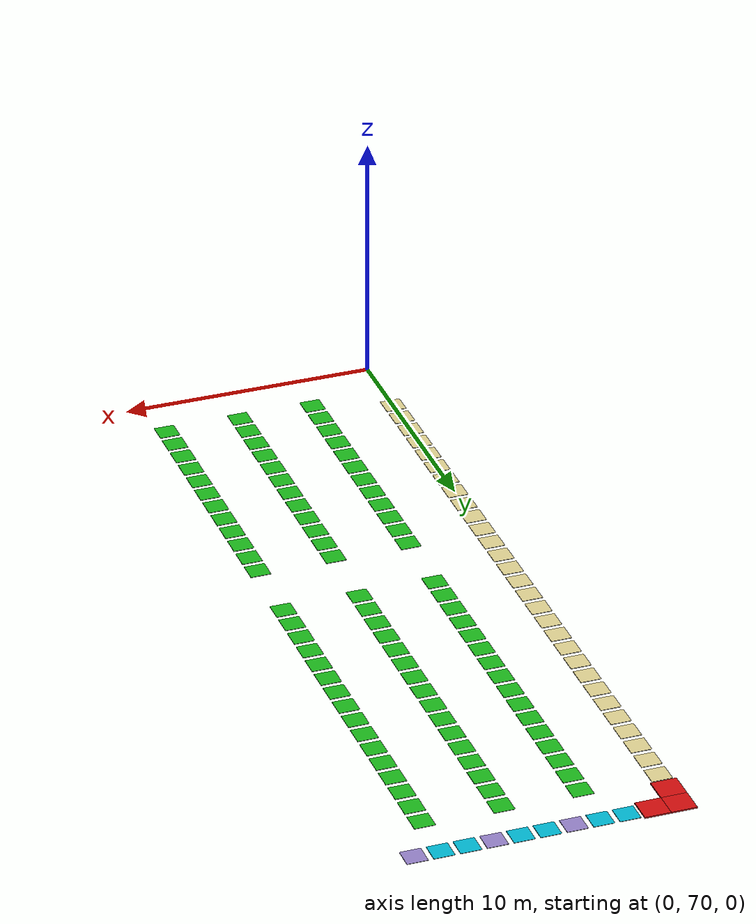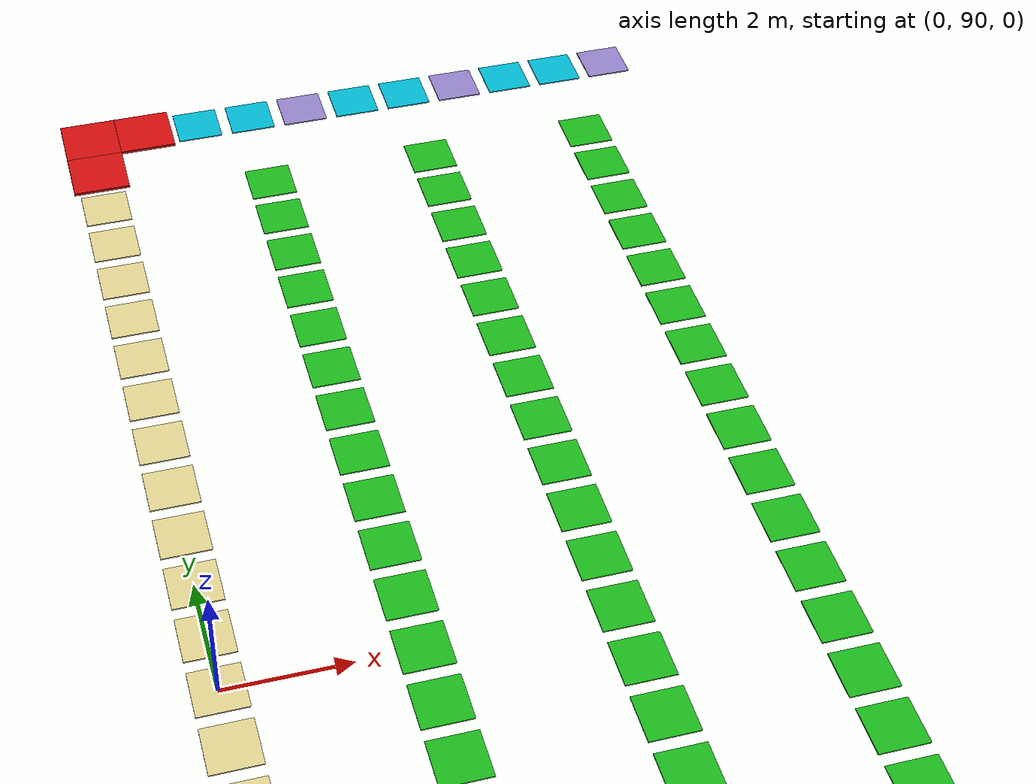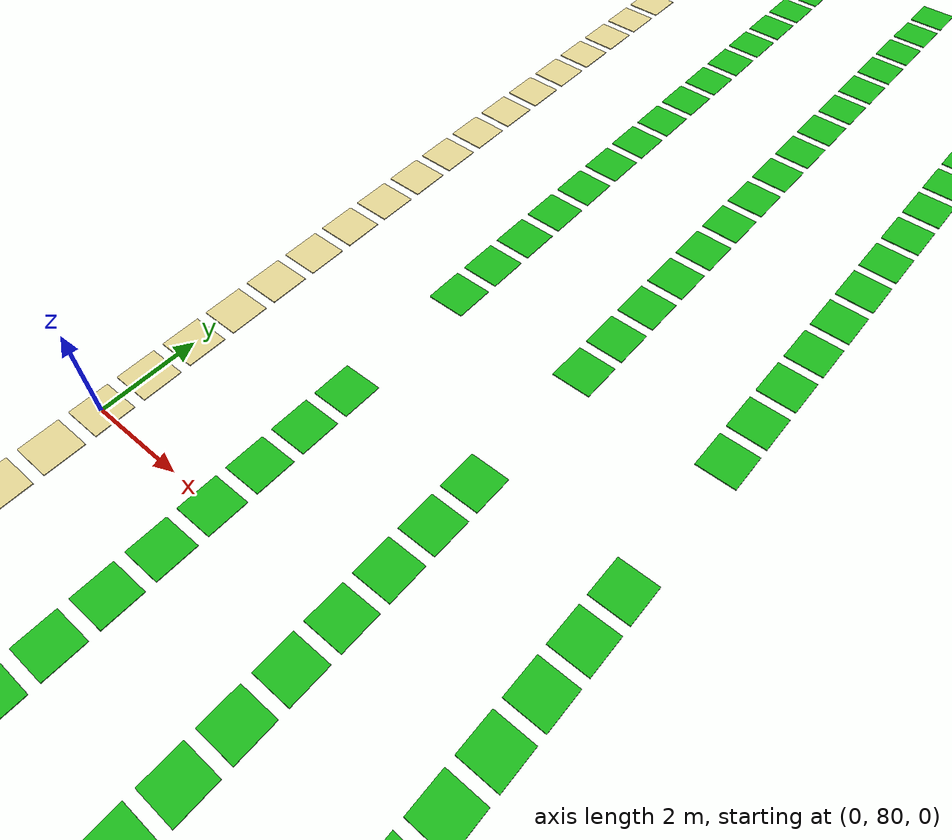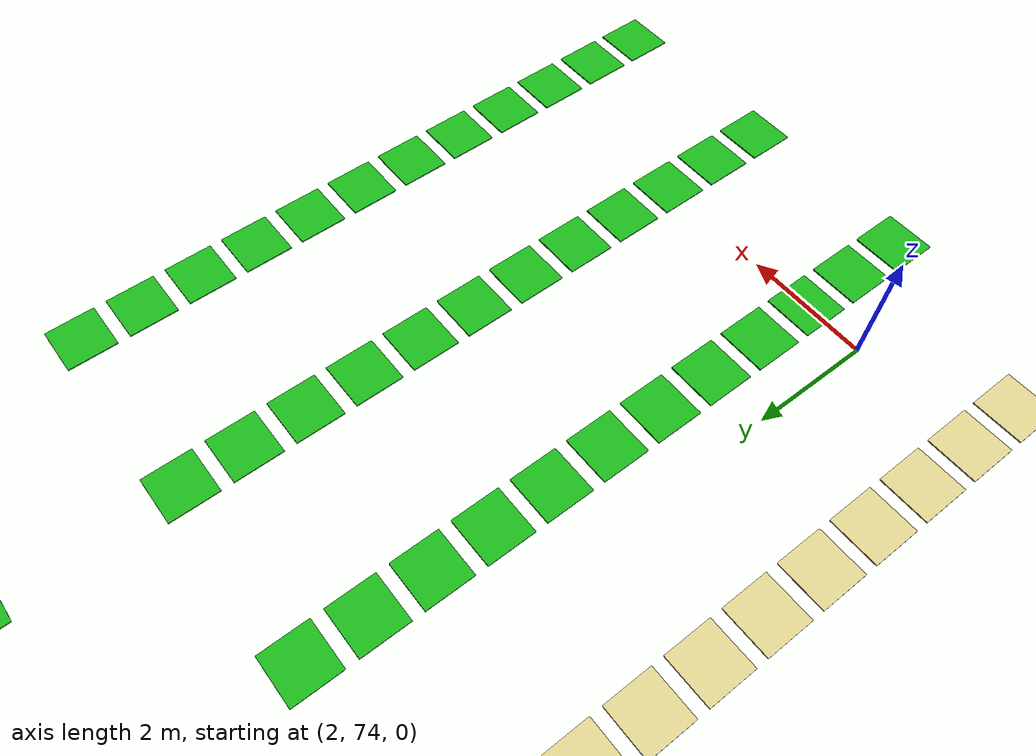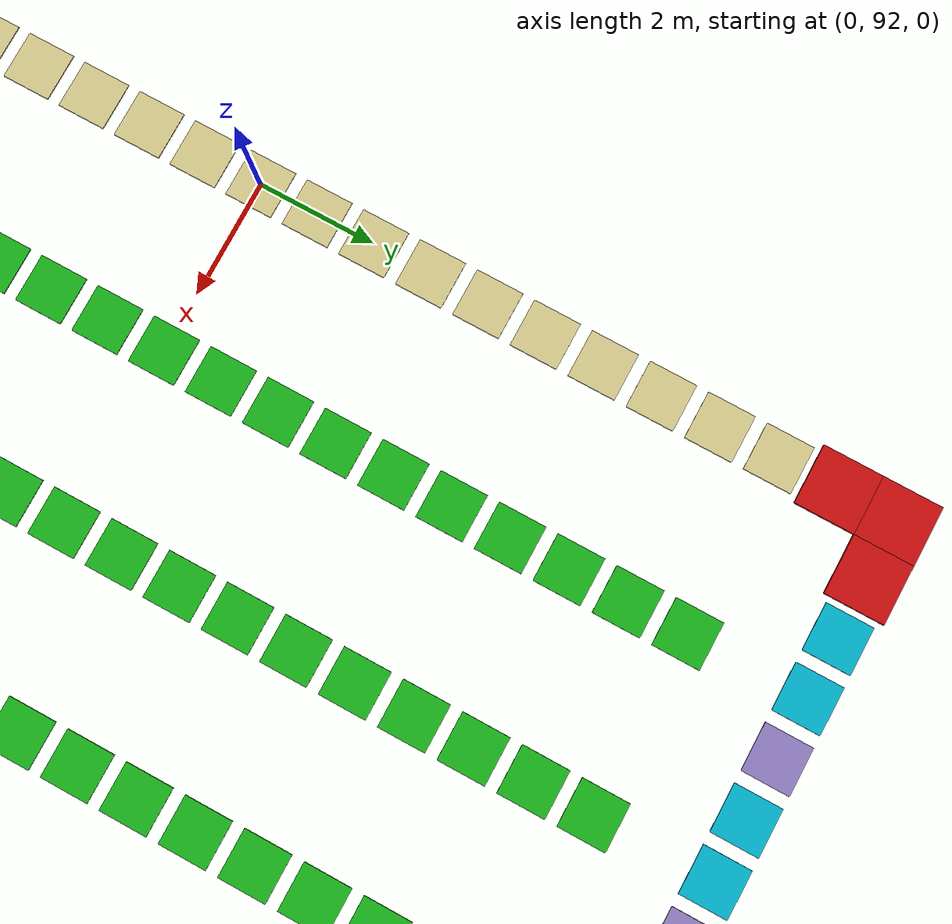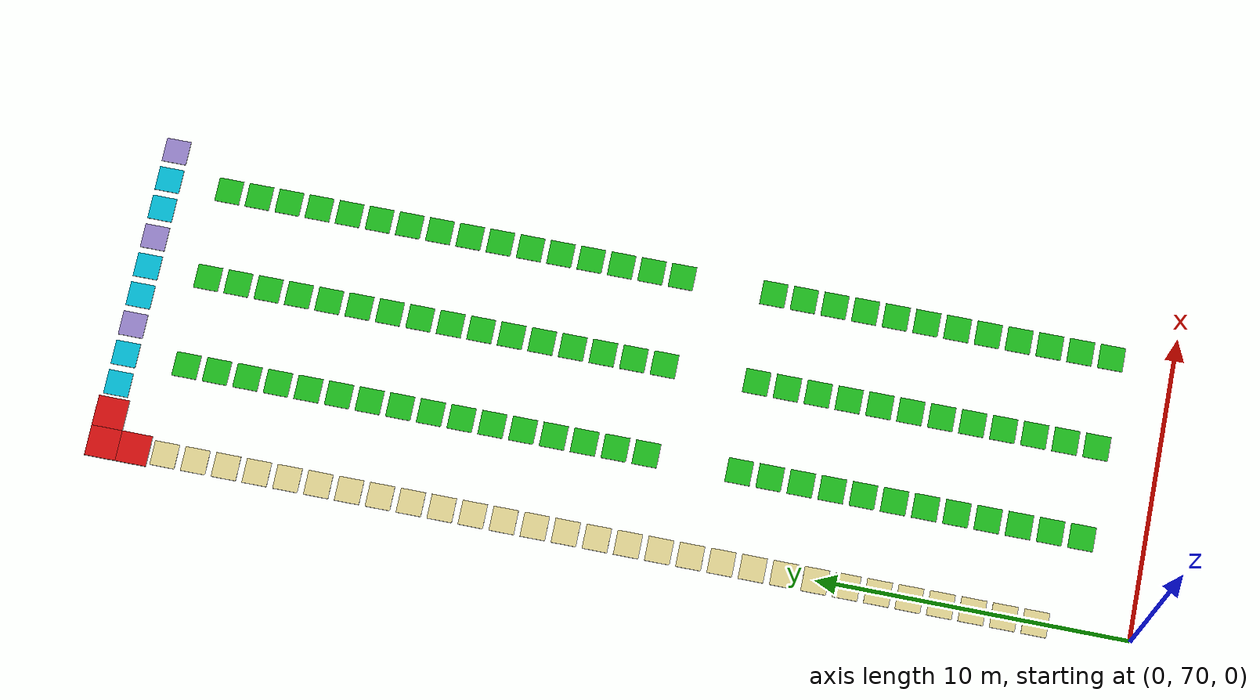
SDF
<sdf version="1.10">
 <world name="my_map">
  <model name="blocked_0002">
   <static>true</static>
   <pose>0.0
        102.0
        0.045
        0 0 0</pose>
   <link name="link">
    <visual name="visual">
     <geometry><box><size>1.0
                1.0
                0.05</size></box></geometry>
     <material><ambient>0.8 0.05 0.05 1</ambient><diffuse>0.8 0.05 0.05 1</diffuse></material>
    </visual>
   </link>
  </model>
  <model name="blocked_0003">
   <static>true</static>
   <pose>0.0
        103.0
        0.045
        0 0 0</pose>
   <link name="link">
    <visual name="visual">
     <geometry><box><size>1.0
                1.0
                0.05</size></box></geometry>
     <material><ambient>0.8 0.05 0.05 1</ambient><diffuse>0.8 0.05 0.05 1</diffuse></material>
    </visual>
   </link>
  </model>
  <model name="blocked_0005">
   <static>true</static>
   <pose>1.0
        103.0
        0.045
        0 0 0</pose>
   <link name="link">
    <visual name="visual">
     <geometry><box><size>1.0
                1.0
                0.05</size></box></geometry>
     <material><ambient>0.8 0.05 0.05 1</ambient><diffuse>0.8 0.05 0.05 1</diffuse></material>
    </visual>
   </link>
  </model>
  <model name="charging_001">
   <static>true</static>
   <pose>2.0
        103.0
        0.02
        0 0 0</pose>
   <link name="link">
    <visual name="visual">
     <geometry><box><size>0.8
                0.8
                0.02</size></box></geometry>
     <material><ambient>0.00 0.70 0.80 1</ambient><diffuse>0.00 0.70 0.80 1</diffuse></material>
    </visual>
   </link>
  </model>
  <model name="charging_002">
   <static>true</static>
   <pose>3.0
        103.0
        0.02
        0 0 0</pose>
   <link name="link">
    <visual name="visual">
     <geometry><box><size>0.8
                0.8
                0.02</size></box></geometry>
     <material><ambient>0.00 0.70 0.80 1</ambient><diffuse>0.00 0.70 0.80 1</diffuse></material>
    </visual>
   </link>
  </model>
  <model name="charge_queue_001">
   <static>true</static>
   <pose>4.0
        103.0
        0.02
        0 0 0</pose>
   <link name="link">
    <visual name="visual">
     <geometry><box><size>0.8
                0.8
                0.02</size></box></geometry>
     <material><ambient>0.56 0.49 0.76 1</ambient><diffuse>0.56 0.49 0.76 1</diffuse></material>
    </visual>
   </link>
  </model>
  <model name="charging_003">
   <static>true</static>
   <pose>5.0
        103.0
        0.02
        0 0 0</pose>
   <link name="link">
    <visual name="visual">
     <geometry><box><size>0.8
                0.8
                0.02</size></box></geometry>
     <material><ambient>0.00 0.70 0.80 1</ambient><diffuse>0.00 0.70 0.80 1</diffuse></material>
    </visual>
   </link>
  </model>
  <model name="charging_004">
   <static>true</static>
   <pose>6.0
        103.0
        0.02
        0 0 0</pose>
   <link name="link">
    <visual name="visual">
     <geometry><box><size>0.8
                0.8
                0.02</size></box></geometry>
     <material><ambient>0.00 0.70 0.80 1</ambient><diffuse>0.00 0.70 0.80 1</diffuse></material>
    </visual>
   </link>
  </model>
  <model name="charge_queue_002">
   <static>true</static>
   <pose>7.0
        103.0
        0.02
        0 0 0</pose>
   <link name="link">
    <visual name="visual">
     <geometry><box><size>0.8
                0.8
                0.02</size></box></geometry>
     <material><ambient>0.56 0.49 0.76 1</ambient><diffuse>0.56 0.49 0.76 1</diffuse></material>
    </visual>
   </link>
  </model>
  <model name="charging_005">
   <static>true</static>
   <pose>8.0
        103.0
        0.02
        0 0 0</pose>
   <link name="link">
    <visual name="visual">
     <geometry><box><size>0.8
                0.8
                0.02</size></box></geometry>
     <material><ambient>0.00 0.70 0.80 1</ambient><diffuse>0.00 0.70 0.80 1</diffuse></material>
    </visual>
   </link>
  </model>
  <model name="charging_006">
   <static>true</static>
   <pose>9.0
        103.0
        0.02
        0 0 0</pose>
   <link name="link">
    <visual name="visual">
     <geometry><box><size>0.8
                0.8
                0.02</size></box></geometry>
     <material><ambient>0.00 0.70 0.80 1</ambient><diffuse>0.00 0.70 0.80 1</diffuse></material>
    </visual>
   </link>
  </model>
  <model name="charge_queue_003">
   <static>true</static>
   <pose>10.0
        103.0
        0.02
        0 0 0</pose>
   <link name="link">
    <visual name="visual">
     <geometry><box><size>0.8
                0.8
                0.02</size></box></geometry>
     <material><ambient>0.56 0.49 0.76 1</ambient><diffuse>0.56 0.49 0.76 1</diffuse></material>
    </visual>
   </link>
  </model>
  <model name="staging_001">
   <static>true</static>
   <pose>0.0
        101.0
        0.02
        0 0 0</pose>
   <link name="link">
    <visual name="visual">
     <geometry><box><size>0.8
                0.8
                0.02</size></box></geometry>
     <material><ambient>0.85 0.80 0.55 1</ambient><diffuse>0.85 0.80 0.55 1</diffuse></material>
    </visual>
   </link>
  </model>
  <model name="shelf_001">
   <static>true</static>
   <pose>3.0
        101.0
        0.02
        0 0 0</pose>
   <link name="link">
    <visual name="visual">
     <geometry><box><size>0.8
                0.8
                0.02</size></box></geometry>
     <material><ambient>0.10 0.70 0.10 1</ambient><diffuse>0.10 0.70 0.10 1</diffuse></material>
    </visual>
   </link>
  </model>
  <model name="shelf_002">
   <static>true</static>
   <pose>6.0
        101.0
        0.02
        0 0 0</pose>
   <link name="link">
    <visual name="visual">
     <geometry><box><size>0.8
                0.8
                0.02</size></box></geometry>
     <material><ambient>0.10 0.70 0.10 1</ambient><diffuse>0.10 0.70 0.10 1</diffuse></material>
    </visual>
   </link>
  </model>
  <model name="shelf_003">
   <static>true</static>
   <pose>9.0
        101.0
        0.02
        0 0 0</pose>
   <link name="link">
    <visual name="visual">
     <geometry><box><size>0.8
                0.8
                0.02</size></box></geometry>
     <material><ambient>0.10 0.70 0.10 1</ambient><diffuse>0.10 0.70 0.10 1</diffuse></material>
    </visual>
   </link>
  </model>
  <model name="staging_003">
   <static>true</static>
   <pose>0.0
        100.0
        0.02
        0 0 0</pose>
   <link name="link">
    <visual name="visual">
     <geometry><box><size>0.8
                0.8
                0.02</size></box></geometry>
     <material><ambient>0.85 0.80 0.55 1</ambient><diffuse>0.85 0.80 0.55 1</diffuse></material>
    </visual>
   </link>
  </model>
  <model name="shelf_026">
   <static>true</static>
   <pose>3.0
        100.0
        0.02
        0 0 0</pose>
   <link name="link">
    <visual name="visual">
     <geometry><box><size>0.8
                0.8
                0.02</size></box></geometry>
     <material><ambient>0.10 0.70 0.10 1</ambient><diffuse>0.10 0.70 0.10 1</diffuse></material>
    </visual>
   </link>
  </model>
  <model name="shelf_027">
   <static>true</static>
   <pose>6.0
        100.0
        0.02
        0 0 0</pose>
   <link name="link">
    <visual name="visual">
     <geometry><box><size>0.8
                0.8
                0.02</size></box></geometry>
     <material><ambient>0.10 0.70 0.10 1</ambient><diffuse>0.10 0.70 0.10 1</diffuse></material>
    </visual>
   </link>
  </model>
  <model name="shelf_028">
   <static>true</static>
   <pose>9.0
        100.0
        0.02
        0 0 0</pose>
   <link name="link">
    <visual name="visual">
     <geometry><box><size>0.8
                0.8
                0.02</size></box></geometry>
     <material><ambient>0.10 0.70 0.10 1</ambient><diffuse>0.10 0.70 0.10 1</diffuse></material>
    </visual>
   </link>
  </model>
  <model name="staging_005">
   <static>true</static>
   <pose>0.0
        99.0
        0.02
        0 0 0</pose>
   <link name="link">
    <visual name="visual">
     <geometry><box><size>0.8
                0.8
                0.02</size></box></geometry>
     <material><ambient>0.85 0.80 0.55 1</ambient><diffuse>0.85 0.80 0.55 1</diffuse></material>
    </visual>
   </link>
  </model>
  <model name="shelf_051">
   <static>true</static>
   <pose>3.0
        99.0
        0.02
        0 0 0</pose>
   <link name="link">
    <visual name="visual">
     <geometry><box><size>0.8
                0.8
                0.02</size></box></geometry>
     <material><ambient>0.10 0.70 0.10 1</ambient><diffuse>0.10 0.70 0.10 1</diffuse></material>
    </visual>
   </link>
  </model>
  <model name="shelf_052">
   <static>true</static>
   <pose>6.0
        99.0
        0.02
        0 0 0</pose>
   <link name="link">
    <visual name="visual">
     <geometry><box><size>0.8
                0.8
                0.02</size></box></geometry>
     <material><ambient>0.10 0.70 0.10 1</ambient><diffuse>0.10 0.70 0.10 1</diffuse></material>
    </visual>
   </link>
  </model>
  <model name="shelf_053">
   <static>true</static>
   <pose>9.0
        99.0
        0.02
        0 0 0</pose>
   <link name="link">
    <visual name="visual">
     <geometry><box><size>0.8
                0.8
                0.02</size></box></geometry>
     <material><ambient>0.10 0.70 0.10 1</ambient><diffuse>0.10 0.70 0.10 1</diffuse></material>
    </visual>
   </link>
  </model>
  <model name="staging_007">
   <static>true</static>
   <pose>0.0
        98.0
        0.02
        0 0 0</pose>
   <link name="link">
    <visual name="visual">
     <geometry><box><size>0.8
                0.8
                0.02</size></box></geometry>
     <material><ambient>0.85 0.80 0.55 1</ambient><diffuse>0.85 0.80 0.55 1</diffuse></material>
    </visual>
   </link>
  </model>
  <model name="shelf_076">
   <static>true</static>
   <pose>3.0
        98.0
        0.02
        0 0 0</pose>
   <link name="link">
    <visual name="visual">
     <geometry><box><size>0.8
                0.8
                0.02</size></box></geometry>
     <material><ambient>0.10 0.70 0.10 1</ambient><diffuse>0.10 0.70 0.10 1</diffuse></material>
    </visual>
   </link>
  </model>
  <model name="shelf_077">
   <static>true</static>
   <pose>6.0
        98.0
        0.02
        0 0 0</pose>
   <link name="link">
    <visual name="visual">
     <geometry><box><size>0.8
                0.8
                0.02</size></box></geometry>
     <material><ambient>0.10 0.70 0.10 1</ambient><diffuse>0.10 0.70 0.10 1</diffuse></material>
    </visual>
   </link>
  </model>
  <model name="shelf_078">
   <static>true</static>
   <pose>9.0
        98.0
        0.02
        0 0 0</pose>
   <link name="link">
    <visual name="visual">
     <geometry><box><size>0.8
                0.8
                0.02</size></box></geometry>
     <material><ambient>0.10 0.70 0.10 1</ambient><diffuse>0.10 0.70 0.10 1</diffuse></material>
    </visual>
   </link>
  </model>
  <model name="staging_009">
   <static>true</static>
   <pose>0.0
        97.0
        0.02
        0 0 0</pose>
   <link name="link">
    <visual name="visual">
     <geometry><box><size>0.8
                0.8
                0.02</size></box></geometry>
     <material><ambient>0.85 0.80 0.55 1</ambient><diffuse>0.85 0.80 0.55 1</diffuse></material>
    </visual>
   </link>
  </model>
  <model name="shelf_101">
   <static>true</static>
   <pose>3.0
        97.0
        0.02
        0 0 0</pose>
   <link name="link">
    <visual name="visual">
     <geometry><box><size>0.8
                0.8
                0.02</size></box></geometry>
     <material><ambient>0.10 0.70 0.10 1</ambient><diffuse>0.10 0.70 0.10 1</diffuse></material>
    </visual>
   </link>
  </model>
  <model name="shelf_102">
   <static>true</static>
   <pose>6.0
        97.0
        0.02
        0 0 0</pose>
   <link name="link">
    <visual name="visual">
     <geometry><box><size>0.8
                0.8
                0.02</size></box></geometry>
     <material><ambient>0.10 0.70 0.10 1</ambient><diffuse>0.10 0.70 0.10 1</diffuse></material>
    </visual>
   </link>
  </model>
  <model name="shelf_103">
   <static>true</static>
   <pose>9.0
        97.0
        0.02
        0 0 0</pose>
   <link name="link">
    <visual name="visual">
     <geometry><box><size>0.8
                0.8
                0.02</size></box></geometry>
     <material><ambient>0.10 0.70 0.10 1</ambient><diffuse>0.10 0.70 0.10 1</diffuse></material>
    </visual>
   </link>
  </model>
  <model name="staging_011">
   <static>true</static>
   <pose>0.0
        96.0
        0.02
        0 0 0</pose>
   <link name="link">
    <visual name="visual">
     <geometry><box><size>0.8
                0.8
                0.02</size></box></geometry>
     <material><ambient>0.85 0.80 0.55 1</ambient><diffuse>0.85 0.80 0.55 1</diffuse></material>
    </visual>
   </link>
  </model>
  <model name="shelf_126">
   <static>true</static>
   <pose>3.0
        96.0
        0.02
        0 0 0</pose>
   <link name="link">
    <visual name="visual">
     <geometry><box><size>0.8
                0.8
                0.02</size></box></geometry>
     <material><ambient>0.10 0.70 0.10 1</ambient><diffuse>0.10 0.70 0.10 1</diffuse></material>
    </visual>
   </link>
  </model>
  <model name="shelf_127">
   <static>true</static>
   <pose>6.0
        96.0
        0.02
        0 0 0</pose>
   <link name="link">
    <visual name="visual">
     <geometry><box><size>0.8
                0.8
                0.02</size></box></geometry>
     <material><ambient>0.10 0.70 0.10 1</ambient><diffuse>0.10 0.70 0.10 1</diffuse></material>
    </visual>
   </link>
  </model>
  <model name="shelf_128">
   <static>true</static>
   <pose>9.0
        96.0
        0.02
        0 0 0</pose>
   <link name="link">
    <visual name="visual">
     <geometry><box><size>0.8
                0.8
                0.02</size></box></geometry>
     <material><ambient>0.10 0.70 0.10 1</ambient><diffuse>0.10 0.70 0.10 1</diffuse></material>
    </visual>
   </link>
  </model>
  <model name="staging_013">
   <static>true</static>
   <pose>0.0
        95.0
        0.02
        0 0 0</pose>
   <link name="link">
    <visual name="visual">
     <geometry><box><size>0.8
                0.8
                0.02</size></box></geometry>
     <material><ambient>0.85 0.80 0.55 1</ambient><diffuse>0.85 0.80 0.55 1</diffuse></material>
    </visual>
   </link>
  </model>
  <model name="shelf_151">
   <static>true</static>
   <pose>3.0
        95.0
        0.02
        0 0 0</pose>
   <link name="link">
    <visual name="visual">
     <geometry><box><size>0.8
                0.8
                0.02</size></box></geometry>
     <material><ambient>0.10 0.70 0.10 1</ambient><diffuse>0.10 0.70 0.10 1</diffuse></material>
    </visual>
   </link>
  </model>
  <model name="shelf_152">
   <static>true</static>
   <pose>6.0
        95.0
        0.02
        0 0 0</pose>
   <link name="link">
    <visual name="visual">
     <geometry><box><size>0.8
                0.8
                0.02</size></box></geometry>
     <material><ambient>0.10 0.70 0.10 1</ambient><diffuse>0.10 0.70 0.10 1</diffuse></material>
    </visual>
   </link>
  </model>
  <model name="shelf_153">
   <static>true</static>
   <pose>9.0
        95.0
        0.02
        0 0 0</pose>
   <link name="link">
    <visual name="visual">
     <geometry><box><size>0.8
                0.8
                0.02</size></box></geometry>
     <material><ambient>0.10 0.70 0.10 1</ambient><diffuse>0.10 0.70 0.10 1</diffuse></material>
    </visual>
   </link>
  </model>
  <model name="staging_015">
   <static>true</static>
   <pose>0.0
        94.0
        0.02
        0 0 0</pose>
   <link name="link">
    <visual name="visual">
     <geometry><box><size>0.8
                0.8
                0.02</size></box></geometry>
     <material><ambient>0.85 0.80 0.55 1</ambient><diffuse>0.85 0.80 0.55 1</diffuse></material>
    </visual>
   </link>
  </model>
  <model name="shelf_176">
   <static>true</static>
   <pose>3.0
        94.0
        0.02
        0 0 0</pose>
   <link name="link">
    <visual name="visual">
     <geometry><box><size>0.8
                0.8
                0.02</size></box></geometry>
     <material><ambient>0.10 0.70 0.10 1</ambient><diffuse>0.10 0.70 0.10 1</diffuse></material>
    </visual>
   </link>
  </model>
  <model name="shelf_177">
   <static>true</static>
   <pose>6.0
        94.0
        0.02
        0 0 0</pose>
   <link name="link">
    <visual name="visual">
     <geometry><box><size>0.8
                0.8
                0.02</size></box></geometry>
     <material><ambient>0.10 0.70 0.10 1</ambient><diffuse>0.10 0.70 0.10 1</diffuse></material>
    </visual>
   </link>
  </model>
  <model name="shelf_178">
   <static>true</static>
   <pose>9.0
        94.0
        0.02
        0 0 0</pose>
   <link name="link">
    <visual name="visual">
     <geometry><box><size>0.8
                0.8
                0.02</size></box></geometry>
     <material><ambient>0.10 0.70 0.10 1</ambient><diffuse>0.10 0.70 0.10 1</diffuse></material>
    </visual>
   </link>
  </model>
  <model name="staging_017">
   <static>true</static>
   <pose>0.0
        93.0
        0.02
        0 0 0</pose>
   <link name="link">
    <visual name="visual">
     <geometry><box><size>0.8
                0.8
                0.02</size></box></geometry>
     <material><ambient>0.85 0.80 0.55 1</ambient><diffuse>0.85 0.80 0.55 1</diffuse></material>
    </visual>
   </link>
  </model>
  <model name="shelf_201">
   <static>true</static>
   <pose>3.0
        93.0
        0.02
        0 0 0</pose>
   <link name="link">
    <visual name="visual">
     <geometry><box><size>0.8
                0.8
                0.02</size></box></geometry>
     <material><ambient>0.10 0.70 0.10 1</ambient><diffuse>0.10 0.70 0.10 1</diffuse></material>
    </visual>
   </link>
  </model>
  <model name="shelf_202">
   <static>true</static>
   <pose>6.0
        93.0
        0.02
        0 0 0</pose>
   <link name="link">
    <visual name="visual">
     <geometry><box><size>0.8
                0.8
                0.02</size></box></geometry>
     <material><ambient>0.10 0.70 0.10 1</ambient><diffuse>0.10 0.70 0.10 1</diffuse></material>
    </visual>
   </link>
  </model>
  <model name="shelf_203">
   <static>true</static>
   <pose>9.0
        93.0
        0.02
        0 0 0</pose>
   <link name="link">
    <visual name="visual">
     <geometry><box><size>0.8
                0.8
                0.02</size></box></geometry>
     <material><ambient>0.10 0.70 0.10 1</ambient><diffuse>0.10 0.70 0.10 1</diffuse></material>
    </visual>
   </link>
  </model>
  <model name="staging_019">
   <static>true</static>
   <pose>0.0
        92.0
        0.02
        0 0 0</pose>
   <link name="link">
    <visual name="visual">
     <geometry><box><size>0.8
                0.8
                0.02</size></box></geometry>
     <material><ambient>0.85 0.80 0.55 1</ambient><diffuse>0.85 0.80 0.55 1</diffuse></material>
    </visual>
   </link>
  </model>
  <model name="shelf_226">
   <static>true</static>
   <pose>3.0
        92.0
        0.02
        0 0 0</pose>
   <link name="link">
    <visual name="visual">
     <geometry><box><size>0.8
                0.8
                0.02</size></box></geometry>
     <material><ambient>0.10 0.70 0.10 1</ambient><diffuse>0.10 0.70 0.10 1</diffuse></material>
    </visual>
   </link>
  </model>
  <model name="shelf_227">
   <static>true</static>
   <pose>6.0
        92.0
        0.02
        0 0 0</pose>
   <link name="link">
    <visual name="visual">
     <geometry><box><size>0.8
                0.8
                0.02</size></box></geometry>
     <material><ambient>0.10 0.70 0.10 1</ambient><diffuse>0.10 0.70 0.10 1</diffuse></material>
    </visual>
   </link>
  </model>
  <model name="shelf_228">
   <static>true</static>
   <pose>9.0
        92.0
        0.02
        0 0 0</pose>
   <link name="link">
    <visual name="visual">
     <geometry><box><size>0.8
                0.8
                0.02</size></box></geometry>
     <material><ambient>0.10 0.70 0.10 1</ambient><diffuse>0.10 0.70 0.10 1</diffuse></material>
    </visual>
   </link>
  </model>
  <model name="staging_021">
   <static>true</static>
   <pose>0.0
        91.0
        0.02
        0 0 0</pose>
   <link name="link">
    <visual name="visual">
     <geometry><box><size>0.8
                0.8
                0.02</size></box></geometry>
     <material><ambient>0.85 0.80 0.55 1</ambient><diffuse>0.85 0.80 0.55 1</diffuse></material>
    </visual>
   </link>
  </model>
  <model name="shelf_251">
   <static>true</static>
   <pose>3.0
        91.0
        0.02
        0 0 0</pose>
   <link name="link">
    <visual name="visual">
     <geometry><box><size>0.8
                0.8
                0.02</size></box></geometry>
     <material><ambient>0.10 0.70 0.10 1</ambient><diffuse>0.10 0.70 0.10 1</diffuse></material>
    </visual>
   </link>
  </model>
  <model name="shelf_252">
   <static>true</static>
   <pose>6.0
        91.0
        0.02
        0 0 0</pose>
   <link name="link">
    <visual name="visual">
     <geometry><box><size>0.8
                0.8
                0.02</size></box></geometry>
     <material><ambient>0.10 0.70 0.10 1</ambient><diffuse>0.10 0.70 0.10 1</diffuse></material>
    </visual>
   </link>
  </model>
  <model name="shelf_253">
   <static>true</static>
   <pose>9.0
        91.0
        0.02
        0 0 0</pose>
   <link name="link">
    <visual name="visual">
     <geometry><box><size>0.8
                0.8
                0.02</size></box></geometry>
     <material><ambient>0.10 0.70 0.10 1</ambient><diffuse>0.10 0.70 0.10 1</diffuse></material>
    </visual>
   </link>
  </model>
  <model name="staging_023">
   <static>true</static>
   <pose>0.0
        90.0
        0.02
        0 0 0</pose>
   <link name="link">
    <visual name="visual">
     <geometry><box><size>0.8
                0.8
                0.02</size></box></geometry>
     <material><ambient>0.85 0.80 0.55 1</ambient><diffuse>0.85 0.80 0.55 1</diffuse></material>
    </visual>
   </link>
  </model>
  <model name="shelf_276">
   <static>true</static>
   <pose>3.0
        90.0
        0.02
        0 0 0</pose>
   <link name="link">
    <visual name="visual">
     <geometry><box><size>0.8
                0.8
                0.02</size></box></geometry>
     <material><ambient>0.10 0.70 0.10 1</ambient><diffuse>0.10 0.70 0.10 1</diffuse></material>
    </visual>
   </link>
  </model>
  <model name="shelf_277">
   <static>true</static>
   <pose>6.0
        90.0
        0.02
        0 0 0</pose>
   <link name="link">
    <visual name="visual">
     <geometry><box><size>0.8
                0.8
                0.02</size></box></geometry>
     <material><ambient>0.10 0.70 0.10 1</ambient><diffuse>0.10 0.70 0.10 1</diffuse></material>
    </visual>
   </link>
  </model>
  <model name="shelf_278">
   <static>true</static>
   <pose>9.0
        90.0
        0.02
        0 0 0</pose>
   <link name="link">
    <visual name="visual">
     <geometry><box><size>0.8
                0.8
                0.02</size></box></geometry>
     <material><ambient>0.10 0.70 0.10 1</ambient><diffuse>0.10 0.70 0.10 1</diffuse></material>
    </visual>
   </link>
  </model>
  <model name="staging_025">
   <static>true</static>
   <pose>0.0
        89.0
        0.02
        0 0 0</pose>
   <link name="link">
    <visual name="visual">
     <geometry><box><size>0.8
                0.8
                0.02</size></box></geometry>
     <material><ambient>0.85 0.80 0.55 1</ambient><diffuse>0.85 0.80 0.55 1</diffuse></material>
    </visual>
   </link>
  </model>
  <model name="shelf_301">
   <static>true</static>
   <pose>3.0
        89.0
        0.02
        0 0 0</pose>
   <link name="link">
    <visual name="visual">
     <geometry><box><size>0.8
                0.8
                0.02</size></box></geometry>
     <material><ambient>0.10 0.70 0.10 1</ambient><diffuse>0.10 0.70 0.10 1</diffuse></material>
    </visual>
   </link>
  </model>
  <model name="shelf_302">
   <static>true</static>
   <pose>6.0
        89.0
        0.02
        0 0 0</pose>
   <link name="link">
    <visual name="visual">
     <geometry><box><size>0.8
                0.8
                0.02</size></box></geometry>
     <material><ambient>0.10 0.70 0.10 1</ambient><diffuse>0.10 0.70 0.10 1</diffuse></material>
    </visual>
   </link>
  </model>
  <model name="shelf_303">
   <static>true</static>
   <pose>9.0
        89.0
        0.02
        0 0 0</pose>
   <link name="link">
    <visual name="visual">
     <geometry><box><size>0.8
                0.8
                0.02</size></box></geometry>
     <material><ambient>0.10 0.70 0.10 1</ambient><diffuse>0.10 0.70 0.10 1</diffuse></material>
    </visual>
   </link>
  </model>
  <model name="staging_027">
   <static>true</static>
   <pose>0.0
        88.0
        0.02
        0 0 0</pose>
   <link name="link">
    <visual name="visual">
     <geometry><box><size>0.8
                0.8
                0.02</size></box></geometry>
     <material><ambient>0.85 0.80 0.55 1</ambient><diffuse>0.85 0.80 0.55 1</diffuse></material>
    </visual>
   </link>
  </model>
  <model name="shelf_326">
   <static>true</static>
   <pose>3.0
        88.0
        0.02
        0 0 0</pose>
   <link name="link">
    <visual name="visual">
     <geometry><box><size>0.8
                0.8
                0.02</size></box></geometry>
     <material><ambient>0.10 0.70 0.10 1</ambient><diffuse>0.10 0.70 0.10 1</diffuse></material>
    </visual>
   </link>
  </model>
  <model name="shelf_327">
   <static>true</static>
   <pose>6.0
        88.0
        0.02
        0 0 0</pose>
   <link name="link">
    <visual name="visual">
     <geometry><box><size>0.8
                0.8
                0.02</size></box></geometry>
     <material><ambient>0.10 0.70 0.10 1</ambient><diffuse>0.10 0.70 0.10 1</diffuse></material>
    </visual>
   </link>
  </model>
  <model name="shelf_328">
   <static>true</static>
   <pose>9.0
        88.0
        0.02
        0 0 0</pose>
   <link name="link">
    <visual name="visual">
     <geometry><box><size>0.8
                0.8
                0.02</size></box></geometry>
     <material><ambient>0.10 0.70 0.10 1</ambient><diffuse>0.10 0.70 0.10 1</diffuse></material>
    </visual>
   </link>
  </model>
  <model name="staging_029">
   <static>true</static>
   <pose>0.0
        87.0
        0.02
        0 0 0</pose>
   <link name="link">
    <visual name="visual">
     <geometry><box><size>0.8
                0.8
                0.02</size></box></geometry>
     <material><ambient>0.85 0.80 0.55 1</ambient><diffuse>0.85 0.80 0.55 1</diffuse></material>
    </visual>
   </link>
  </model>
  <model name="shelf_351">
   <static>true</static>
   <pose>3.0
        87.0
        0.02
        0 0 0</pose>
   <link name="link">
    <visual name="visual">
     <geometry><box><size>0.8
                0.8
                0.02</size></box></geometry>
     <material><ambient>0.10 0.70 0.10 1</ambient><diffuse>0.10 0.70 0.10 1</diffuse></material>
    </visual>
   </link>
  </model>
  <model name="shelf_352">
   <static>true</static>
   <pose>6.0
        87.0
        0.02
        0 0 0</pose>
   <link name="link">
    <visual name="visual">
     <geometry><box><size>0.8
                0.8
                0.02</size></box></geometry>
     <material><ambient>0.10 0.70 0.10 1</ambient><diffuse>0.10 0.70 0.10 1</diffuse></material>
    </visual>
   </link>
  </model>
  <model name="shelf_353">
   <static>true</static>
   <pose>9.0
        87.0
        0.02
        0 0 0</pose>
   <link name="link">
    <visual name="visual">
     <geometry><box><size>0.8
                0.8
                0.02</size></box></geometry>
     <material><ambient>0.10 0.70 0.10 1</ambient><diffuse>0.10 0.70 0.10 1</diffuse></material>
    </visual>
   </link>
  </model>
  <model name="staging_031">
   <static>true</static>
   <pose>0.0
        86.0
        0.02
        0 0 0</pose>
   <link name="link">
    <visual name="visual">
     <geometry><box><size>0.8
                0.8
                0.02</size></box></geometry>
     <material><ambient>0.85 0.80 0.55 1</ambient><diffuse>0.85 0.80 0.55 1</diffuse></material>
    </visual>
   </link>
  </model>
  <model name="shelf_376">
   <static>true</static>
   <pose>3.0
        86.0
        0.02
        0 0 0</pose>
   <link name="link">
    <visual name="visual">
     <geometry><box><size>0.8
                0.8
                0.02</size></box></geometry>
     <material><ambient>0.10 0.70 0.10 1</ambient><diffuse>0.10 0.70 0.10 1</diffuse></material>
    </visual>
   </link>
  </model>
  <model name="shelf_377">
   <static>true</static>
   <pose>6.0
        86.0
        0.02
        0 0 0</pose>
   <link name="link">
    <visual name="visual">
     <geometry><box><size>0.8
                0.8
                0.02</size></box></geometry>
     <material><ambient>0.10 0.70 0.10 1</ambient><diffuse>0.10 0.70 0.10 1</diffuse></material>
    </visual>
   </link>
  </model>
  <model name="shelf_378">
   <static>true</static>
   <pose>9.0
        86.0
        0.02
        0 0 0</pose>
   <link name="link">
    <visual name="visual">
     <geometry><box><size>0.8
                0.8
                0.02</size></box></geometry>
     <material><ambient>0.10 0.70 0.10 1</ambient><diffuse>0.10 0.70 0.10 1</diffuse></material>
    </visual>
   </link>
  </model>
  <model name="staging_033">
   <static>true</static>
   <pose>0.0
        85.0
        0.02
        0 0 0</pose>
   <link name="link">
    <visual name="visual">
     <geometry><box><size>0.8
                0.8
                0.02</size></box></geometry>
     <material><ambient>0.85 0.80 0.55 1</ambient><diffuse>0.85 0.80 0.55 1</diffuse></material>
    </visual>
   </link>
  </model>
  <model name="staging_035">
   <static>true</static>
   <pose>0.0
        84.0
        0.02
        0 0 0</pose>
   <link name="link">
    <visual name="visual">
     <geometry><box><size>0.8
                0.8
                0.02</size></box></geometry>
     <material><ambient>0.85 0.80 0.55 1</ambient><diffuse>0.85 0.80 0.55 1</diffuse></material>
    </visual>
   </link>
  </model>
  <model name="staging_037">
   <static>true</static>
   <pose>0.0
        83.0
        0.02
        0 0 0</pose>
   <link name="link">
    <visual name="visual">
     <geometry><box><size>0.8
                0.8
                0.02</size></box></geometry>
     <material><ambient>0.85 0.80 0.55 1</ambient><diffuse>0.85 0.80 0.55 1</diffuse></material>
    </visual>
   </link>
  </model>
  <model name="shelf_401">
   <static>true</static>
   <pose>3.0
        83.0
        0.02
        0 0 0</pose>
   <link name="link">
    <visual name="visual">
     <geometry><box><size>0.8
                0.8
                0.02</size></box></geometry>
     <material><ambient>0.10 0.70 0.10 1</ambient><diffuse>0.10 0.70 0.10 1</diffuse></material>
    </visual>
   </link>
  </model>
  <model name="shelf_402">
   <static>true</static>
   <pose>6.0
        83.0
        0.02
        0 0 0</pose>
   <link name="link">
    <visual name="visual">
     <geometry><box><size>0.8
                0.8
                0.02</size></box></geometry>
     <material><ambient>0.10 0.70 0.10 1</ambient><diffuse>0.10 0.70 0.10 1</diffuse></material>
    </visual>
   </link>
  </model>
  <model name="shelf_403">
   <static>true</static>
   <pose>9.0
        83.0
        0.02
        0 0 0</pose>
   <link name="link">
    <visual name="visual">
     <geometry><box><size>0.8
                0.8
                0.02</size></box></geometry>
     <material><ambient>0.10 0.70 0.10 1</ambient><diffuse>0.10 0.70 0.10 1</diffuse></material>
    </visual>
   </link>
  </model>
  <model name="staging_039">
   <static>true</static>
   <pose>0.0
        82.0
        0.02
        0 0 0</pose>
   <link name="link">
    <visual name="visual">
     <geometry><box><size>0.8
                0.8
                0.02</size></box></geometry>
     <material><ambient>0.85 0.80 0.55 1</ambient><diffuse>0.85 0.80 0.55 1</diffuse></material>
    </visual>
   </link>
  </model>
  <model name="shelf_426">
   <static>true</static>
   <pose>3.0
        82.0
        0.02
        0 0 0</pose>
   <link name="link">
    <visual name="visual">
     <geometry><box><size>0.8
                0.8
                0.02</size></box></geometry>
     <material><ambient>0.10 0.70 0.10 1</ambient><diffuse>0.10 0.70 0.10 1</diffuse></material>
    </visual>
   </link>
  </model>
  <model name="shelf_427">
   <static>true</static>
   <pose>6.0
        82.0
        0.02
        0 0 0</pose>
   <link name="link">
    <visual name="visual">
     <geometry><box><size>0.8
                0.8
                0.02</size></box></geometry>
     <material><ambient>0.10 0.70 0.10 1</ambient><diffuse>0.10 0.70 0.10 1</diffuse></material>
    </visual>
   </link>
  </model>
  <model name="shelf_428">
   <static>true</static>
   <pose>9.0
        82.0
        0.02
        0 0 0</pose>
   <link name="link">
    <visual name="visual">
     <geometry><box><size>0.8
                0.8
                0.02</size></box></geometry>
     <material><ambient>0.10 0.70 0.10 1</ambient><diffuse>0.10 0.70 0.10 1</diffuse></material>
    </visual>
   </link>
  </model>
  <model name="staging_041">
   <static>true</static>
   <pose>0.0
        81.0
        0.02
        0 0 0</pose>
   <link name="link">
    <visual name="visual">
     <geometry><box><size>0.8
                0.8
                0.02</size></box></geometry>
     <material><ambient>0.85 0.80 0.55 1</ambient><diffuse>0.85 0.80 0.55 1</diffuse></material>
    </visual>
   </link>
  </model>
  <model name="shelf_451">
   <static>true</static>
   <pose>3.0
        81.0
        0.02
        0 0 0</pose>
   <link name="link">
    <visual name="visual">
     <geometry><box><size>0.8
                0.8
                0.02</size></box></geometry>
     <material><ambient>0.10 0.70 0.10 1</ambient><diffuse>0.10 0.70 0.10 1</diffuse></material>
    </visual>
   </link>
  </model>
  <model name="shelf_452">
   <static>true</static>
   <pose>6.0
        81.0
        0.02
        0 0 0</pose>
   <link name="link">
    <visual name="visual">
     <geometry><box><size>0.8
                0.8
                0.02</size></box></geometry>
     <material><ambient>0.10 0.70 0.10 1</ambient><diffuse>0.10 0.70 0.10 1</diffuse></material>
    </visual>
   </link>
  </model>
  <model name="shelf_453">
   <static>true</static>
   <pose>9.0
        81.0
        0.02
        0 0 0</pose>
   <link name="link">
    <visual name="visual">
     <geometry><box><size>0.8
                0.8
                0.02</size></box></geometry>
     <material><ambient>0.10 0.70 0.10 1</ambient><diffuse>0.10 0.70 0.10 1</diffuse></material>
    </visual>
   </link>
  </model>
  <model name="staging_043">
   <static>true</static>
   <pose>0.0
        80.0
        0.02
        0 0 0</pose>
   <link name="link">
    <visual name="visual">
     <geometry><box><size>0.8
                0.8
                0.02</size></box></geometry>
     <material><ambient>0.85 0.80 0.55 1</ambient><diffuse>0.85 0.80 0.55 1</diffuse></material>
    </visual>
   </link>
  </model>
  <model name="shelf_476">
   <static>true</static>
   <pose>3.0
        80.0
        0.02
        0 0 0</pose>
   <link name="link">
    <visual name="visual">
     <geometry><box><size>0.8
                0.8
                0.02</size></box></geometry>
     <material><ambient>0.10 0.70 0.10 1</ambient><diffuse>0.10 0.70 0.10 1</diffuse></material>
    </visual>
   </link>
  </model>
  <model name="shelf_477">
   <static>true</static>
   <pose>6.0
        80.0
        0.02
        0 0 0</pose>
   <link name="link">
    <visual name="visual">
     <geometry><box><size>0.8
                0.8
                0.02</size></box></geometry>
     <material><ambient>0.10 0.70 0.10 1</ambient><diffuse>0.10 0.70 0.10 1</diffuse></material>
    </visual>
   </link>
  </model>
  <model name="shelf_478">
   <static>true</static>
   <pose>9.0
        80.0
        0.02
        0 0 0</pose>
   <link name="link">
    <visual name="visual">
     <geometry><box><size>0.8
                0.8
                0.02</size></box></geometry>
     <material><ambient>0.10 0.70 0.10 1</ambient><diffuse>0.10 0.70 0.10 1</diffuse></material>
    </visual>
   </link>
  </model>
  <model name="staging_045">
   <static>true</static>
   <pose>0.0
        79.0
        0.02
        0 0 0</pose>
   <link name="link">
    <visual name="visual">
     <geometry><box><size>0.8
                0.8
                0.02</size></box></geometry>
     <material><ambient>0.85 0.80 0.55 1</ambient><diffuse>0.85 0.80 0.55 1</diffuse></material>
    </visual>
   </link>
  </model>
  <model name="shelf_501">
   <static>true</static>
   <pose>3.0
        79.0
        0.02
        0 0 0</pose>
   <link name="link">
    <visual name="visual">
     <geometry><box><size>0.8
                0.8
                0.02</size></box></geometry>
     <material><ambient>0.10 0.70 0.10 1</ambient><diffuse>0.10 0.70 0.10 1</diffuse></material>
    </visual>
   </link>
  </model>
  <model name="shelf_502">
   <static>true</static>
   <pose>6.0
        79.0
        0.02
        0 0 0</pose>
   <link name="link">
    <visual name="visual">
     <geometry><box><size>0.8
                0.8
                0.02</size></box></geometry>
     <material><ambient>0.10 0.70 0.10 1</ambient><diffuse>0.10 0.70 0.10 1</diffuse></material>
    </visual>
   </link>
  </model>
  <model name="shelf_503">
   <static>true</static>
   <pose>9.0
        79.0
        0.02
        0 0 0</pose>
   <link name="link">
    <visual name="visual">
     <geometry><box><size>0.8
                0.8
                0.02</size></box></geometry>
     <material><ambient>0.10 0.70 0.10 1</ambient><diffuse>0.10 0.70 0.10 1</diffuse></material>
    </visual>
   </link>
  </model>
  <model name="staging_047">
   <static>true</static>
   <pose>0.0
        78.0
        0.02
        0 0 0</pose>
   <link name="link">
    <visual name="visual">
     <geometry><box><size>0.8
                0.8
                0.02</size></box></geometry>
     <material><ambient>0.85 0.80 0.55 1</ambient><diffuse>0.85 0.80 0.55 1</diffuse></material>
    </visual>
   </link>
  </model>
  <model name="shelf_526">
   <static>true</static>
   <pose>3.0
        78.0
        0.02
        0 0 0</pose>
   <link name="link">
    <visual name="visual">
     <geometry><box><size>0.8
                0.8
                0.02</size></box></geometry>
     <material><ambient>0.10 0.70 0.10 1</ambient><diffuse>0.10 0.70 0.10 1</diffuse></material>
    </visual>
   </link>
  </model>
  <model name="shelf_527">
   <static>true</static>
   <pose>6.0
        78.0
        0.02
        0 0 0</pose>
   <link name="link">
    <visual name="visual">
     <geometry><box><size>0.8
                0.8
                0.02</size></box></geometry>
     <material><ambient>0.10 0.70 0.10 1</ambient><diffuse>0.10 0.70 0.10 1</diffuse></material>
    </visual>
   </link>
  </model>
  <model name="shelf_528">
   <static>true</static>
   <pose>9.0
        78.0
        0.02
        0 0 0</pose>
   <link name="link">
    <visual name="visual">
     <geometry><box><size>0.8
                0.8
                0.02</size></box></geometry>
     <material><ambient>0.10 0.70 0.10 1</ambient><diffuse>0.10 0.70 0.10 1</diffuse></material>
    </visual>
   </link>
  </model>
  <model name="staging_049">
   <static>true</static>
   <pose>0.0
        77.0
        0.02
        0 0 0</pose>
   <link name="link">
    <visual name="visual">
     <geometry><box><size>0.8
                0.8
                0.02</size></box></geometry>
     <material><ambient>0.85 0.80 0.55 1</ambient><diffuse>0.85 0.80 0.55 1</diffuse></material>
    </visual>
   </link>
  </model>
  <model name="shelf_551">
   <static>true</static>
   <pose>3.0
        77.0
        0.02
        0 0 0</pose>
   <link name="link">
    <visual name="visual">
     <geometry><box><size>0.8
                0.8
                0.02</size></box></geometry>
     <material><ambient>0.10 0.70 0.10 1</ambient><diffuse>0.10 0.70 0.10 1</diffuse></material>
    </visual>
   </link>
  </model>
  <model name="shelf_552">
   <static>true</static>
   <pose>6.0
        77.0
        0.02
        0 0 0</pose>
   <link name="link">
    <visual name="visual">
     <geometry><box><size>0.8
                0.8
                0.02</size></box></geometry>
     <material><ambient>0.10 0.70 0.10 1</ambient><diffuse>0.10 0.70 0.10 1</diffuse></material>
    </visual>
   </link>
  </model>
  <model name="shelf_553">
   <static>true</static>
   <pose>9.0
        77.0
        0.02
        0 0 0</pose>
   <link name="link">
    <visual name="visual">
     <geometry><box><size>0.8
                0.8
                0.02</size></box></geometry>
     <material><ambient>0.10 0.70 0.10 1</ambient><diffuse>0.10 0.70 0.10 1</diffuse></material>
    </visual>
   </link>
  </model>
  <model name="staging_051">
   <static>true</static>
   <pose>0.0
        76.0
        0.02
        0 0 0</pose>
   <link name="link">
    <visual name="visual">
     <geometry><box><size>0.8
                0.8
                0.02</size></box></geometry>
     <material><ambient>0.85 0.80 0.55 1</ambient><diffuse>0.85 0.80 0.55 1</diffuse></material>
    </visual>
   </link>
  </model>
  <model name="shelf_576">
   <static>true</static>
   <pose>3.0
        76.0
        0.02
        0 0 0</pose>
   <link name="link">
    <visual name="visual">
     <geometry><box><size>0.8
                0.8
                0.02</size></box></geometry>
     <material><ambient>0.10 0.70 0.10 1</ambient><diffuse>0.10 0.70 0.10 1</diffuse></material>
    </visual>
   </link>
  </model>
  <model name="shelf_577">
   <static>true</static>
   <pose>6.0
        76.0
        0.02
        0 0 0</pose>
   <link name="link">
    <visual name="visual">
     <geometry><box><size>0.8
                0.8
                0.02</size></box></geometry>
     <material><ambient>0.10 0.70 0.10 1</ambient><diffuse>0.10 0.70 0.10 1</diffuse></material>
    </visual>
   </link>
  </model>
  <model name="shelf_578">
   <static>true</static>
   <pose>9.0
        76.0
        0.02
        0 0 0</pose>
   <link name="link">
    <visual name="visual">
     <geometry><box><size>0.8
                0.8
                0.02</size></box></geometry>
     <material><ambient>0.10 0.70 0.10 1</ambient><diffuse>0.10 0.70 0.10 1</diffuse></material>
    </visual>
   </link>
  </model>
  <model name="staging_053">
   <static>true</static>
   <pose>0.0
        75.0
        0.02
        0 0 0</pose>
   <link name="link">
    <visual name="visual">
     <geometry><box><size>0.8
                0.8
                0.02</size></box></geometry>
     <material><ambient>0.85 0.80 0.55 1</ambient><diffuse>0.85 0.80 0.55 1</diffuse></material>
    </visual>
   </link>
  </model>
  <model name="shelf_601">
   <static>true</static>
   <pose>3.0
        75.0
        0.02
        0 0 0</pose>
   <link name="link">
    <visual name="visual">
     <geometry><box><size>0.8
                0.8
                0.02</size></box></geometry>
     <material><ambient>0.10 0.70 0.10 1</ambient><diffuse>0.10 0.70 0.10 1</diffuse></material>
    </visual>
   </link>
  </model>
  <model name="shelf_602">
   <static>true</static>
   <pose>6.0
        75.0
        0.02
        0 0 0</pose>
   <link name="link">
    <visual name="visual">
     <geometry><box><size>0.8
                0.8
                0.02</size></box></geometry>
     <material><ambient>0.10 0.70 0.10 1</ambient><diffuse>0.10 0.70 0.10 1</diffuse></material>
    </visual>
   </link>
  </model>
  <model name="shelf_603">
   <static>true</static>
   <pose>9.0
        75.0
        0.02
        0 0 0</pose>
   <link name="link">
    <visual name="visual">
     <geometry><box><size>0.8
                0.8
                0.02</size></box></geometry>
     <material><ambient>0.10 0.70 0.10 1</ambient><diffuse>0.10 0.70 0.10 1</diffuse></material>
    </visual>
   </link>
  </model>
  <model name="staging_055">
   <static>true</static>
   <pose>0.0
        74.0
        0.02
        0 0 0</pose>
   <link name="link">
    <visual name="visual">
     <geometry><box><size>0.8
                0.8
                0.02</size></box></geometry>
     <material><ambient>0.85 0.80 0.55 1</ambient><diffuse>0.85 0.80 0.55 1</diffuse></material>
    </visual>
   </link>
  </model>
  <model name="shelf_626">
   <static>true</static>
   <pose>3.0
        74.0
        0.02
        0 0 0</pose>
   <link name="link">
    <visual name="visual">
     <geometry><box><size>0.8
                0.8
                0.02</size></box></geometry>
     <material><ambient>0.10 0.70 0.10 1</ambient><diffuse>0.10 0.70 0.10 1</diffuse></material>
    </visual>
   </link>
  </model>
  <model name="shelf_627">
   <static>true</static>
   <pose>6.0
        74.0
        0.02
        0 0 0</pose>
   <link name="link">
    <visual name="visual">
     <geometry><box><size>0.8
                0.8
                0.02</size></box></geometry>
     <material><ambient>0.10 0.70 0.10 1</ambient><diffuse>0.10 0.70 0.10 1</diffuse></material>
    </visual>
   </link>
  </model>
  <model name="shelf_628">
   <static>true</static>
   <pose>9.0
        74.0
        0.02
        0 0 0</pose>
   <link name="link">
    <visual name="visual">
     <geometry><box><size>0.8
                0.8
                0.02</size></box></geometry>
     <material><ambient>0.10 0.70 0.10 1</ambient><diffuse>0.10 0.70 0.10 1</diffuse></material>
    </visual>
   </link>
  </model>
  <model name="staging_057">
   <static>true</static>
   <pose>0.0
        73.0
        0.02
        0 0 0</pose>
   <link name="link">
    <visual name="visual">
     <geometry><box><size>0.8
                0.8
                0.02</size></box></geometry>
     <material><ambient>0.85 0.80 0.55 1</ambient><diffuse>0.85 0.80 0.55 1</diffuse></material>
    </visual>
   </link>
  </model>
  <model name="shelf_651">
   <static>true</static>
   <pose>3.0
        73.0
        0.02
        0 0 0</pose>
   <link name="link">
    <visual name="visual">
     <geometry><box><size>0.8
                0.8
                0.02</size></box></geometry>
     <material><ambient>0.10 0.70 0.10 1</ambient><diffuse>0.10 0.70 0.10 1</diffuse></material>
    </visual>
   </link>
  </model>
  <model name="shelf_652">
   <static>true</static>
   <pose>6.0
        73.0
        0.02
        0 0 0</pose>
   <link name="link">
    <visual name="visual">
     <geometry><box><size>0.8
                0.8
                0.02</size></box></geometry>
     <material><ambient>0.10 0.70 0.10 1</ambient><diffuse>0.10 0.70 0.10 1</diffuse></material>
    </visual>
   </link>
  </model>
  <model name="shelf_653">
   <static>true</static>
   <pose>9.0
        73.0
        0.02
        0 0 0</pose>
   <link name="link">
    <visual name="visual">
     <geometry><box><size>0.8
                0.8
                0.02</size></box></geometry>
     <material><ambient>0.10 0.70 0.10 1</ambient><diffuse>0.10 0.70 0.10 1</diffuse></material>
    </visual>
   </link>
  </model>
  <model name="shelf_676">
   <static>true</static>
   <pose>3.0
        72.0
        0.02
        0 0 0</pose>
   <link name="link">
    <visual name="visual">
     <geometry><box><size>0.8
                0.8
                0.02</size></box></geometry>
     <material><ambient>0.10 0.70 0.10 1</ambient><diffuse>0.10 0.70 0.10 1</diffuse></material>
    </visual>
   </link>
  </model>
  <model name="shelf_677">
   <static>true</static>
   <pose>6.0
        72.0
        0.02
        0 0 0</pose>
   <link name="link">
    <visual name="visual">
     <geometry><box><size>0.8
                0.8
                0.02</size></box></geometry>
     <material><ambient>0.10 0.70 0.10 1</ambient><diffuse>0.10 0.70 0.10 1</diffuse></material>
    </visual>
   </link>
  </model>
  <model name="shelf_678">
   <static>true</static>
   <pose>9.0
        72.0
        0.02
        0 0 0</pose>
   <link name="link">
    <visual name="visual">
     <geometry><box><size>0.8
                0.8
                0.02</size></box></geometry>
     <material><ambient>0.10 0.70 0.10 1</ambient><diffuse>0.10 0.70 0.10 1</diffuse></material>
    </visual>
   </link>
  </model>
 </world>
</sdf>
